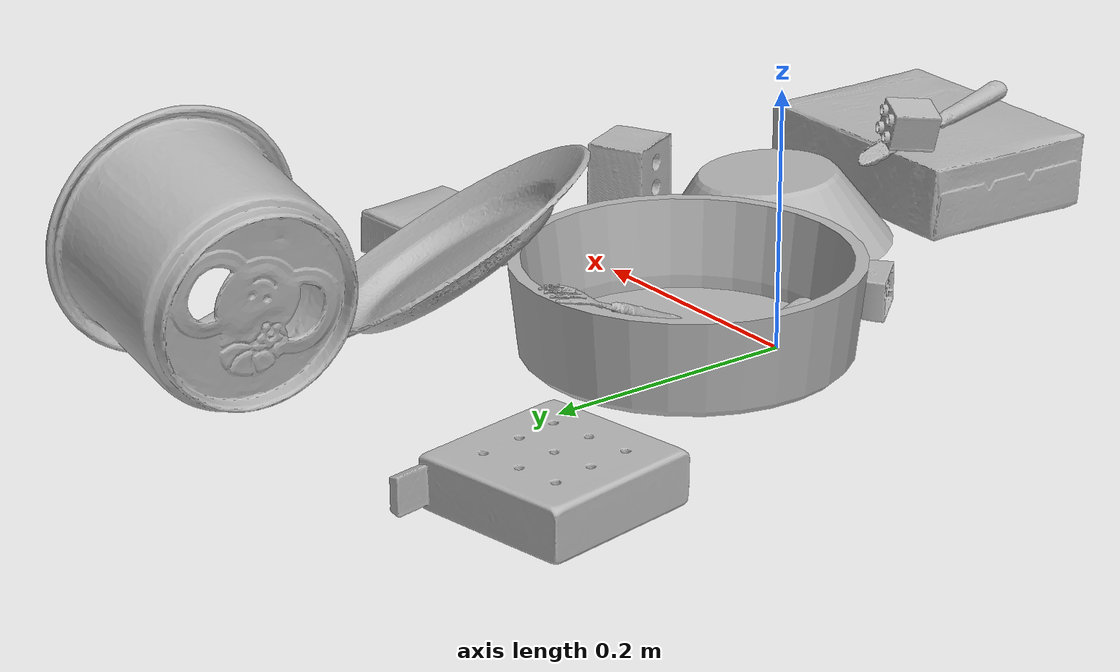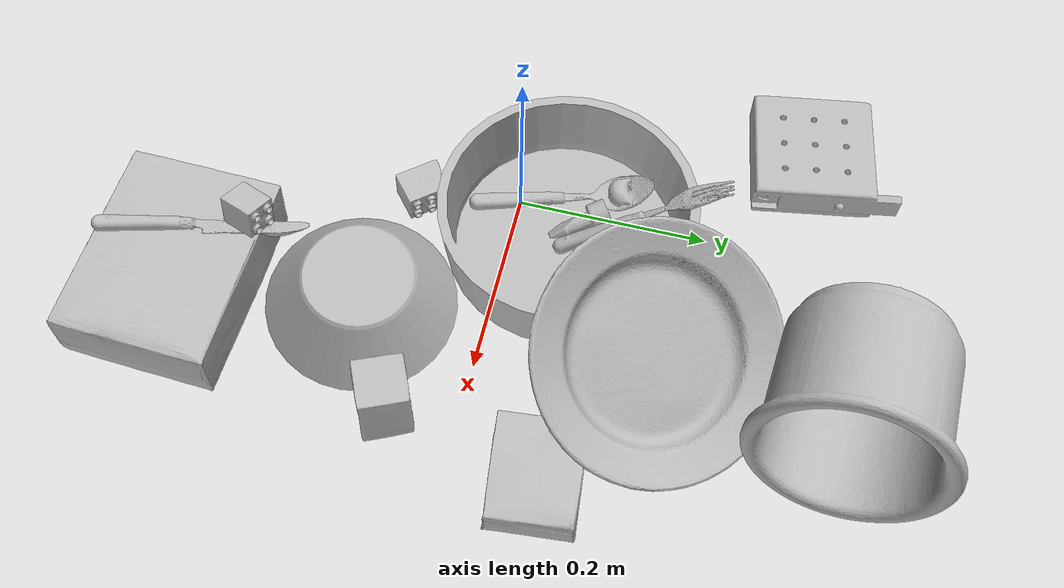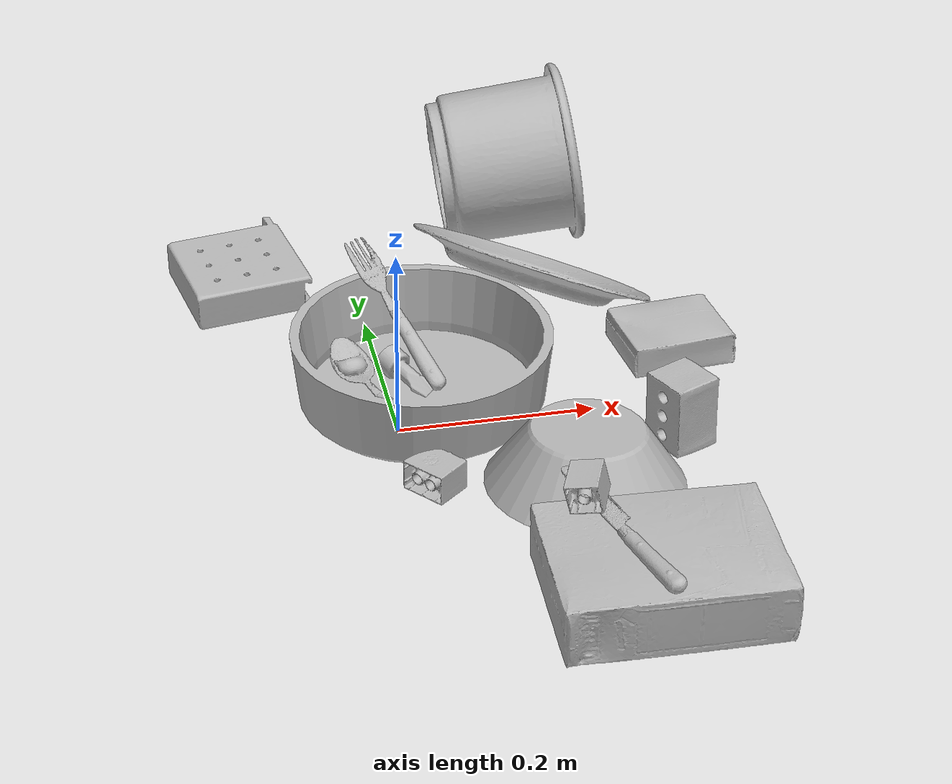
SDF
<sdf version="1.4">
  <world name="default">
    <light name="light1" type="point">
      <pose>0 0 1 0 0 0</pose>
      <diffuse>3 3 3 1</diffuse>
      <specular>3 3 3 1</specular>
    </light>
    <light name="light2" type="point">
      <pose>0 0.5 2 0 0 0</pose>
      <diffuse>1 1 1 1</diffuse>
      <specular>1 1 1 1</specular>
    </light>
    <light name="light3" type="point">
      <pose>0 0.5 2 0 0 0</pose>
      <diffuse>3 3 3 1</diffuse>
      <specular>3 3 3 1</specular>
    </light>
    <scene>
      <ambient>0.7 0.7 0.7</ambient>
    </scene>
    <model name="plate1">
      <link name="link_plate1">
        <collision name="default">
          <geometry>
            <mesh>
              <uri>model://pan_tefal/collision_meshes/collision.obj</uri>
              <scale>1.0 1.0 1.0</scale>
            </mesh>
          </geometry>
          <surface>
            <friction>
              <ode>
                <mu>0.5</mu>
                <mu2>0.5</mu2>
              </ode>
            </friction>
          <contact>
        <ode>
            <max_vel>0</max_vel>
            <min_depth>0.0001</min_depth>
            <kp>1e8</kp>
        </ode>
    </contact></surface>
        </collision>
        <visual name="default">
          <geometry>
            <mesh>
              <uri>model://pan_tefal/visual_meshes/visual.dae</uri>
              <scale>1.0 1.0 1.0</scale>
            </mesh>
          </geometry>
        </visual>
        <inertial>
          <mass>0.7050602436065674</mass>
          <pose>-0.00018002082651946694 3.279098018538207e-05 -0.008514933288097382 0.0008190340203057913 -0.0003301288692481796 -0.3318720847028622</pose>
          <inertia>
            <ixx>0.0048669963</ixx>
            <iyy>0.0048983735</iyy>
            <izz>0.008959204</izz>
            <ixy>0</ixy>
            <ixz>0</ixz>
            <iyz>0</iyz>
          </inertia>
        </inertial>
      </link>
      <pose>0.034966133534908295 0.05725717917084694 0.038050003349781036 1.321444602625508e-06 -2.023148847634939e-06 1.111212926497079</pose>
    </model>
    <model name="plate2">
      <link name="link_plate2">
        <collision name="default">
          <geometry>
            <mesh>
              <uri>model://plate/collision_meshes/collision.obj</uri>
              <scale>1.0 1.0 1.0</scale>
            </mesh>
          </geometry>
          <surface>
            <friction>
              <ode>
                <mu>0.5</mu>
                <mu2>0.5</mu2>
              </ode>
            </friction>
          <contact>
        <ode>
            <max_vel>0</max_vel>
            <min_depth>0.0001</min_depth>
            <kp>1e8</kp>
        </ode>
    </contact></surface>
        </collision>
        <visual name="default">
          <geometry>
            <mesh>
              <uri>model://plate/visual_meshes/visual.dae</uri>
              <scale>1.0 1.0 1.0</scale>
            </mesh>
          </geometry>
        </visual>
        <inertial>
          <mass>0.2442774623632431</mass>
          <pose>-0.0006044568726792932 0.0002782584633678198 -0.0010561984963715076 0.0022187778178748897 -0.0032254919076997847 0.45261061169843664</pose>
          <inertia>
            <ixx>0.0011427345</ixx>
            <iyy>0.001131805</iyy>
            <izz>0.002235018</izz>
            <ixy>0</ixy>
            <ixz>0</ixz>
            <iyz>0</iyz>
          </inertia>
        </inertial>
      </link>
      <pose>0.17211823165416718 0.1750648468732834 0.06145089864730835 0.10588785108510422 0.5499630097055251 0.9835497808059526</pose>
    </model>
    <model name="bowl1">
      <link name="link_bowl1">
        <collision name="default">
          <geometry>
            <mesh>
              <uri>model://bowl_a/collision_meshes/collision.obj</uri>
              <scale>1.0 1.0 1.0</scale>
            </mesh>
          </geometry>
          <surface>
            <friction>
              <ode>
                <mu>0.5</mu>
                <mu2>0.5</mu2>
              </ode>
            </friction>
          <contact>
        <ode>
            <max_vel>0</max_vel>
            <min_depth>0.0001</min_depth>
            <kp>1e8</kp>
        </ode>
    </contact></surface>
        </collision>
        <visual name="default">
          <geometry>
            <mesh>
              <uri>model://bowl_a/visual_meshes/visual.dae</uri>
              <scale>1.0 1.0 1.0</scale>
            </mesh>
          </geometry>
        </visual>
        <inertial>
          <mass>0.4025156497955322</mass>
          <pose>0.00027867371682077646 4.731032458948903e-05 -0.0013765298062935472 -0.00098054011869292 -0.0010938175729232503 -0.19123339485915475</pose>
          <inertia>
            <ixx>0.0011459808</ixx>
            <iyy>0.0011530165</iyy>
            <izz>0.0020381706</izz>
            <ixy>0</ixy>
            <ixz>0</ixz>
            <iyz>0</iyz>
          </inertia>
        </inertial>
      </link>
      <pose>0.1608455628156662 -0.1262911707162857 0.036268699914216995 3.130651719345606 -0.06327732812823689 -2.0188140710377116</pose>
    </model>
    <model name="bowl2">
      <link name="link_bowl2">
        <collision name="default">
          <geometry>
            <mesh>
              <uri>model://bowl/collision_meshes/collision.obj</uri>
              <scale>1.0 1.0 1.0</scale>
            </mesh>
          </geometry>
          <surface>
            <friction>
              <ode>
                <mu>0.5</mu>
                <mu2>0.5</mu2>
              </ode>
            </friction>
          <contact>
        <ode>
            <max_vel>0</max_vel>
            <min_depth>0.0001</min_depth>
            <kp>1e8</kp>
        </ode>
    </contact></surface>
        </collision>
        <visual name="default">
          <geometry>
            <mesh>
              <uri>model://bowl/visual_meshes/visual.dae</uri>
              <scale>1.0 1.0 1.0</scale>
            </mesh>
          </geometry>
        </visual>
        <inertial>
          <mass>0.04694162309169769</mass>
          <pose>0.00020445318659767509 -0.001030211104080081 -0.0008042642730288208 -0.01576400215318024 0.014546874726031786 0.7140460761636136</pose>
          <inertia>
            <ixx>0.0001078286</ixx>
            <iyy>0.000105419305</iyy>
            <izz>0.00018140484</izz>
            <ixy>0</ixy>
            <ixz>0</ixz>
            <iyz>0</iyz>
          </inertia>
        </inertial>
      </link>
      <pose>0.15961122512817383 -0.1285734921693802 0.027239788323640823 -3.133261135514763 0.0002226260428611699 -1.8523350629262931</pose>
    </model>
    <model name="silverware1">
      <link name="link_silverware1">
        <collision name="default">
          <geometry>
            <mesh>
              <uri>model://spoon/collision_meshes/collision.obj</uri>
              <scale>1.0 1.0 1.0</scale>
            </mesh>
          </geometry>
          <surface>
            <friction>
              <ode>
                <mu>0.5</mu>
                <mu2>0.5</mu2>
              </ode>
            </friction>
          <contact>
        <ode>
            <max_vel>0</max_vel>
            <min_depth>0.0001</min_depth>
            <kp>1e8</kp>
        </ode>
    </contact></surface>
        </collision>
        <visual name="default">
          <geometry>
            <mesh>
              <uri>model://spoon/visual_meshes/visual.dae</uri>
              <scale>1.0 1.0 1.0</scale>
            </mesh>
          </geometry>
        </visual>
        <inertial>
          <mass>0.03710600733757019</mass>
          <pose>-0.005526318680495024 -0.0016034168656915426 -0.0007271650829352438 0.03521602429168162 -0.03906583039209626 0.006150612964611125</pose>
          <inertia>
            <ixx>2.0638956e-06</ixx>
            <iyy>0.00014118708</iyy>
            <izz>0.00014220492</izz>
            <ixy>0</ixy>
            <ixz>0</ixz>
            <iyz>0</iyz>
          </inertia>
        </inertial>
      </link>
      <pose>-0.010597395710647106 0.04296215623617172 0.01586860977113247 0.003905516534398128 0.025265988976649573 1.8855795925851058</pose>
    </model>
    <model name="box1">
      <link name="link_box1">
        <collision name="default">
          <geometry>
            <mesh>
              <uri>model://cracker_box/collision_meshes/collision.obj</uri>
              <scale>1.0 1.0 1.0</scale>
            </mesh>
          </geometry>
          <surface>
            <friction>
              <ode>
                <mu>0.5</mu>
                <mu2>0.5</mu2>
              </ode>
            </friction>
          <contact>
        <ode>
            <max_vel>0</max_vel>
            <min_depth>0.0001</min_depth>
            <kp>1e8</kp>
        </ode>
    </contact></surface>
        </collision>
        <visual name="default">
          <geometry>
            <mesh>
              <uri>model://cracker_box/visual_meshes/visual.dae</uri>
              <scale>1.0 1.0 1.0</scale>
            </mesh>
          </geometry>
        </visual>
        <inertial>
          <mass>2.252173662185669</mass>
          <pose>0.0009464137838222086 0.0002543425071053207 -0.0017029535956680775 -0.000316207513865998 -0.011106489600465836 0.0025467954670329632</pose>
          <inertia>
            <ixx>0.0057285246</ixx>
            <iyy>0.00945892</iyy>
            <izz>0.013498746</izz>
            <ixy>0</ixy>
            <ixz>0</ixz>
            <iyz>0</iyz>
          </inertia>
        </inertial>
      </link>
      <pose>0.18402771651744843 -0.3155668079853058 0.03553135693073273 3.1372017445345444 -0.01654296432154769 -0.034163643972963835</pose>
    </model>
    <model name="box2">
      <link name="link_box2">
        <collision name="default">
          <geometry>
            <mesh>
              <uri>model://pudding_box/collision_meshes/collision.obj</uri>
              <scale>1.0 1.0 1.0</scale>
            </mesh>
          </geometry>
          <surface>
            <friction>
              <ode>
                <mu>0.5</mu>
                <mu2>0.5</mu2>
              </ode>
            </friction>
          <contact>
        <ode>
            <max_vel>0</max_vel>
            <min_depth>0.0001</min_depth>
            <kp>1e8</kp>
        </ode>
    </contact></surface>
        </collision>
        <visual name="default">
          <geometry>
            <mesh>
              <uri>model://pudding_box/visual_meshes/visual.dae</uri>
              <scale>1.0 1.0 1.0</scale>
            </mesh>
          </geometry>
        </visual>
        <inertial>
          <mass>0.38795164227485657</mass>
          <pose>0.0004894821904599667 0.0008067885646596551 -0.0005188827635720372 0.005213102258195884 -0.006603798723254801 0.020079825158131615</pose>
          <inertia>
            <ixx>0.00043855933</ixx>
            <iyy>0.00029506587</iyy>
            <izz>0.0006476475</izz>
            <ixy>0</ixy>
            <ixz>0</ixz>
            <iyz>0</iyz>
          </inertia>
        </inertial>
      </link>
      <pose>0.30354565382003784 0.08837980031967163 0.018685976043343544 3.1415901173545797 2.298165523190975e-07 1.6771013507923196</pose>
    </model>
    <model name="cup1">
      <link name="link_cup1">
        <collision name="default">
          <geometry>
            <mesh>
              <uri>model://i_cups/collision_meshes/collision.obj</uri>
              <scale>2.0 2.0 2.0</scale>
            </mesh>
          </geometry>
          <surface>
            <friction>
              <ode>
                <mu>0.5</mu>
                <mu2>0.5</mu2>
              </ode>
            </friction>
          <contact>
        <ode>
            <max_vel>0</max_vel>
            <min_depth>0.0001</min_depth>
            <kp>1e8</kp>
        </ode>
    </contact></surface>
        </collision>
        <visual name="default">
          <geometry>
            <mesh>
              <uri>model://i_cups/visual_meshes/visual.dae</uri>
              <scale>2.0 2.0 2.0</scale>
            </mesh>
          </geometry>
        </visual>
        <inertial>
          <mass>0.8781275153160095</mass>
          <pose>0.00022480404004454613 0.0003359464171808213 -0.0017158013070002198 -0.028983801808433914 -0.03987279960401974 -0.34589629987983705</pose>
          <inertia>
            <ixx>0.004863122</ixx>
            <iyy>0.004905971</iyy>
            <izz>0.005435325</izz>
            <ixy>0</ixy>
            <ixz>0</ixz>
            <iyz>0</iyz>
          </inertia>
        </inertial>
      </link>
      <pose>0.18490390479564667 0.36554035544395447 0.08945725113153458 1.4465679838866368 -0.0758714517410339 1.5005732175501354</pose>
    </model>
    <model name="silverware2">
      <link name="link_silverware2">
        <collision name="default">
          <geometry>
            <mesh>
              <uri>model://fork/collision_meshes/collision.obj</uri>
              <scale>1.0 1.0 1.0</scale>
            </mesh>
          </geometry>
          <surface>
            <friction>
              <ode>
                <mu>0.5</mu>
                <mu2>0.5</mu2>
              </ode>
            </friction>
          <contact>
        <ode>
            <max_vel>0</max_vel>
            <min_depth>0.0001</min_depth>
            <kp>1e8</kp>
        </ode>
    </contact></surface>
        </collision>
        <visual name="default">
          <geometry>
            <mesh>
              <uri>model://fork/visual_meshes/visual.dae</uri>
              <scale>1.0 1.0 1.0</scale>
            </mesh>
          </geometry>
        </visual>
        <inertial>
          <mass>0.027322283014655113</mass>
          <pose>-0.02957003377377987 0.0004658822435885668 0.0003218860656488687 -0.013551502868568713 -0.01097783467120204 0.01445389601768567</pose>
          <inertia>
            <ixx>9.578007e-07</ixx>
            <iyy>7.133063e-05</iyy>
            <izz>7.175903e-05</izz>
            <ixy>0</ixy>
            <ixz>0</ixz>
            <iyz>0</iyz>
          </inertia>
        </inertial>
      </link>
      <pose>0.021477943286299706 0.1304815262556076 0.05605322867631912 2.864760330204292 -0.4786223027443929 1.9400653364987983</pose>
    </model>
    <model name="silverware3">
      <link name="link_silverware3">
        <collision name="default">
          <geometry>
            <mesh>
              <uri>model://knife/collision_meshes/collision.obj</uri>
              <scale>1.0 1.0 1.0</scale>
            </mesh>
          </geometry>
          <surface>
            <friction>
              <ode>
                <mu>0.5</mu>
                <mu2>0.5</mu2>
              </ode>
            </friction>
          <contact>
        <ode>
            <max_vel>0</max_vel>
            <min_depth>0.0001</min_depth>
            <kp>1e8</kp>
        </ode>
    </contact></surface>
        </collision>
        <visual name="default">
          <geometry>
            <mesh>
              <uri>model://knife/visual_meshes/visual.dae</uri>
              <scale>1.0 1.0 1.0</scale>
            </mesh>
          </geometry>
        </visual>
        <inertial>
          <mass>0.036400385200977325</mass>
          <pose>-0.02378525584936142 0.0015275126788765192 5.0620175898075104e-05 0.07305876248658423 0.017248417790611748 -0.007409819472147862</pose>
          <inertia>
            <ixx>1.0331904e-06</ixx>
            <iyy>0.00013984439</iyy>
            <izz>0.00014017712</izz>
            <ixy>0</ixy>
            <ixz>0</ixz>
            <iyz>0</iyz>
          </inertia>
        </inertial>
      </link>
      <pose>0.15108102560043335 -0.2905392050743103 0.07587024569511414 -0.2738767708580236 0.04253808720841967 1.8182506818598416</pose>
    </model>
    <model name="toy1">
      <link name="link_toy1">
        <collision name="default">
          <geometry>
            <mesh>
              <uri>model://d_lego_duplo/collision_meshes/collision.obj</uri>
              <scale>1.0 1.0 1.0</scale>
            </mesh>
          </geometry>
          <surface>
            <friction>
              <ode>
                <mu>0.5</mu>
                <mu2>0.5</mu2>
              </ode>
            </friction>
          <contact>
        <ode>
            <max_vel>0</max_vel>
            <min_depth>0.0001</min_depth>
            <kp>1e8</kp>
        </ode>
    </contact></surface>
        </collision>
        <visual name="default">
          <geometry>
            <mesh>
              <uri>model://d_lego_duplo/visual_meshes/visual.dae</uri>
              <scale>1.0 1.0 1.0</scale>
            </mesh>
          </geometry>
        </visual>
        <inertial>
          <mass>0.060466669499874115</mass>
          <pose>0.002830563113093376 0.00016366162162739784 0.0008589806384406984 0.08010949306805684 -0.3835523000845375 0.0010296676643477064</pose>
          <inertia>
            <ixx>1.1705457e-05</ixx>
            <iyy>1.6613216e-05</iyy>
            <izz>1.6021117e-05</izz>
            <ixy>0</ixy>
            <ixz>0</ixz>
            <iyz>0</iyz>
          </inertia>
        </inertial>
      </link>
      <pose>0.019516635686159134 -0.10021737217903137 0.01638062484562397 -1.5707957162550794 -0.008043614181445703 -0.8757568164996132</pose>
    </model>
    <model name="toy2">
      <link name="link_toy2">
        <collision name="default">
          <geometry>
            <mesh>
              <uri>model://b_lego_duplo/collision_meshes/collision.obj</uri>
              <scale>1.0 1.0 1.0</scale>
            </mesh>
          </geometry>
          <surface>
            <friction>
              <ode>
                <mu>0.5</mu>
                <mu2>0.5</mu2>
              </ode>
            </friction>
          <contact>
        <ode>
            <max_vel>0</max_vel>
            <min_depth>0.0001</min_depth>
            <kp>1e8</kp>
        </ode>
    </contact></surface>
        </collision>
        <visual name="default">
          <geometry>
            <mesh>
              <uri>model://b_lego_duplo/visual_meshes/visual.dae</uri>
              <scale>1.0 1.0 1.0</scale>
            </mesh>
          </geometry>
        </visual>
        <inertial>
          <mass>0.030077241361141205</mass>
          <pose>-0.00011053079651901498 -9.15232340048533e-06 0.0019294286612421274 -0.037494862621914114 -0.026354003688684128 0.4518993950044185</pose>
          <inertia>
            <ixx>6.155532e-06</ixx>
            <iyy>6.196912e-06</iyy>
            <izz>5.4843786e-06</izz>
            <ixy>0</ixy>
            <ixz>0</ixz>
            <iyz>0</iyz>
          </inertia>
        </inertial>
      </link>
      <pose>0.13012973964214325 -0.24445123970508575 0.08999548107385635 1.4541012358503378 0.213101845409244 2.7198725911420776</pose>
    </model>
    <model name="toy3">
      <link name="link_toy3">
        <collision name="default">
          <geometry>
            <mesh>
              <uri>model://nine_hole_peg_test/collision_meshes/collision.obj</uri>
              <scale>1.0 1.0 1.0</scale>
            </mesh>
          </geometry>
          <surface>
            <friction>
              <ode>
                <mu>0.5</mu>
                <mu2>0.5</mu2>
              </ode>
            </friction>
          <contact>
        <ode>
            <max_vel>0</max_vel>
            <min_depth>0.0001</min_depth>
            <kp>1e8</kp>
        </ode>
    </contact></surface>
        </collision>
        <visual name="default">
          <geometry>
            <mesh>
              <uri>model://nine_hole_peg_test/visual_meshes/visual.dae</uri>
              <scale>1.0 1.0 1.0</scale>
            </mesh>
          </geometry>
        </visual>
        <inertial>
          <mass>0.9411391019821167</mass>
          <pose>-0.0046173869632184505 -0.009647615253925323 2.646069333422929e-05 -0.0014666795036135398 0.0007194176186147546 -0.6342417663820423</pose>
          <inertia>
            <ixx>0.0014716258</ixx>
            <iyy>0.0013740414</iyy>
            <izz>0.0025787223</izz>
            <ixy>0</ixy>
            <ixz>0</ixz>
            <iyz>0</iyz>
          </inertia>
        </inertial>
      </link>
      <pose>-0.11756213754415512 0.30332598090171814 0.02077099308371544 -2.4516789113183255e-08 -1.324318043703684e-08 0.17273277946860605</pose>
    </model>
    <model name="toy4">
      <link name="link_toy4">
        <collision name="default">
          <geometry>
            <mesh>
              <uri>model://foam_brick/collision_meshes/collision.obj</uri>
              <scale>1.0 1.0 1.0</scale>
            </mesh>
          </geometry>
          <surface>
            <friction>
              <ode>
                <mu>0.5</mu>
                <mu2>0.5</mu2>
              </ode>
            </friction>
          <contact>
        <ode>
            <max_vel>0</max_vel>
            <min_depth>0.0001</min_depth>
            <kp>1e8</kp>
        </ode>
    </contact></surface>
        </collision>
        <visual name="default">
          <geometry>
            <mesh>
              <uri>model://foam_brick/visual_meshes/visual.dae</uri>
              <scale>1.0 1.0 1.0</scale>
            </mesh>
          </geometry>
        </visual>
        <inertial>
          <mass>0.1527709662914276</mass>
          <pose>-0.00025224717683158815 0.0003458428254816681 -0.00025321016437374055 -0.29402015796081304 0.017274438268763303 -0.0007449889855682301</pose>
          <inertia>
            <ixx>6.673321e-05</ixx>
            <iyy>0.00010654301</iyy>
            <izz>0.00010789704</izz>
            <ixy>0</ixy>
            <ixz>0</ixz>
            <iyz>0</iyz>
          </inertia>
        </inertial>
      </link>
      <pose>0.2700968086719513 -0.06974997371435165 0.03830837458372116 2.010286885078512 1.5521815593978971 -0.7062657091507768</pose>
    </model>
    <model name="toy5">
      <link name="link_toy5">
        <collision name="default">
          <geometry>
            <mesh>
              <uri>model://e_toy_airplane/collision_meshes/collision.obj</uri>
              <scale>1.0 1.0 1.0</scale>
            </mesh>
          </geometry>
          <surface>
            <friction>
              <ode>
                <mu>0.5</mu>
                <mu2>0.5</mu2>
              </ode>
            </friction>
          <contact>
        <ode>
            <max_vel>0</max_vel>
            <min_depth>0.0001</min_depth>
            <kp>1e8</kp>
        </ode>
    </contact></surface>
        </collision>
        <visual name="default">
          <geometry>
            <mesh>
              <uri>model://e_toy_airplane/visual_meshes/visual.dae</uri>
              <scale>1.0 1.0 1.0</scale>
            </mesh>
          </geometry>
        </visual>
        <inertial>
          <mass>0.01976589486002922</mass>
          <pose>0.00011740453192032874 -2.2483010980067775e-05 -0.011187207885086536 0.005518504435964777 0.009228288570086122 0.15041432989491213</pose>
          <inertia>
            <ixx>6.0327766e-06</ixx>
            <iyy>5.971064e-06</iyy>
            <izz>1.813087e-06</izz>
            <ixy>0</ixy>
            <ixz>0</ixz>
            <iyz>0</iyz>
          </inertia>
        </inertial>
      </link>
      <pose>0.022776849567890167 0.06782948225736618 0.019003866240382195 -2.0681913588293432 -1.0862700790226243 -2.1325818439641484</pose>
    </model>
  <physics type="ode">
      <max_contacts>50</max_contacts>
      <ode>
        <solver>
          <type>quick</type>
          <iters>75</iters>
        </solver>
        <constraints>
          <contact_max_correcting_vel>0</contact_max_correcting_vel>
          <contact_surface_layer>0</contact_surface_layer>
        </constraints>
      </ode>
    </physics></world>
</sdf>
